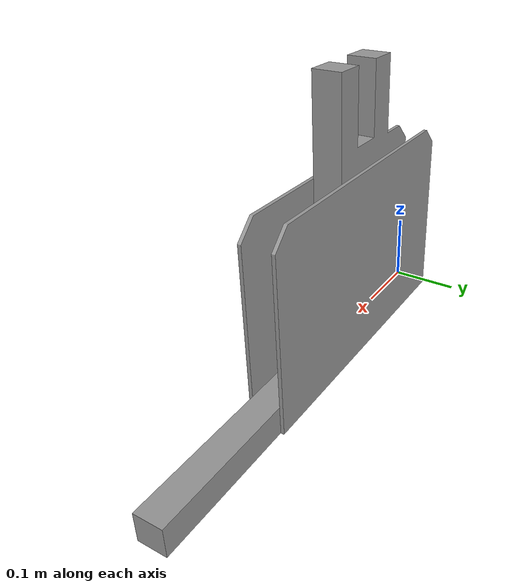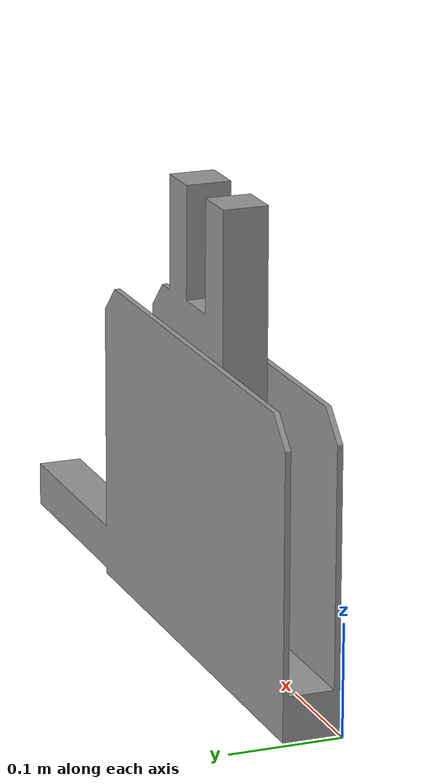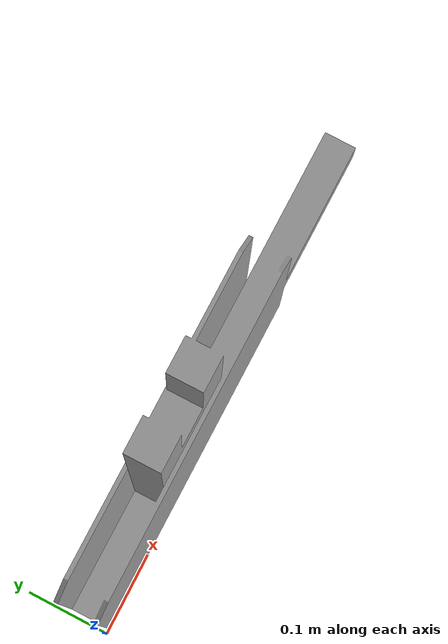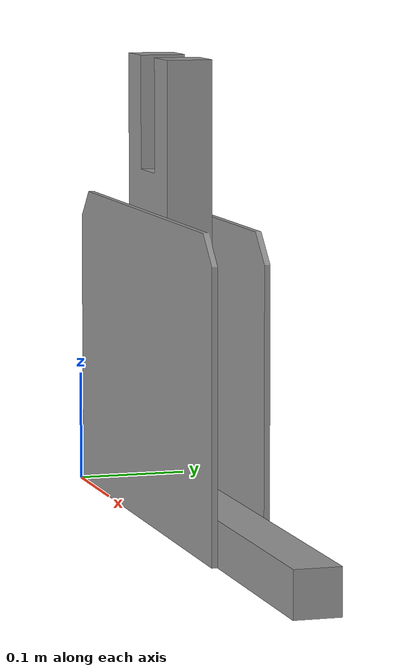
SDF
<?xml version="1.0"?>
<sdf version="1.5">
    <model name="table_balance">
        <static>false</static>
        <link name="link">
            <collision name="collision">
                <geometry>
                    <mesh>
                        <uri>model://balance/meshes/assemblage1.STL</uri>
                        <scale>0.001 0.001 0.001</scale>
                    </mesh>
                </geometry>
                <surface>
                    <friction>
                        <ode>
                            <mu>100</mu>
                            <mu2>50</mu2>
                        </ode>
                    </friction>
                </surface>
            </collision>
            <visual name="visual">
                <geometry>
                    <mesh>
                        <uri>model://balance/meshes/assemblage1.STL</uri>
                        <scale>0.001 0.001 0.001</scale>
                    </mesh>
                </geometry>
                <material>
                    <script>
                        <uri>file://media/materials/scripts/gazebo.material</uri>
                        <name>Gazebo/Grey</name>
                    </script>
                </material>
            </visual>
        </link>
    </model>
</sdf>
